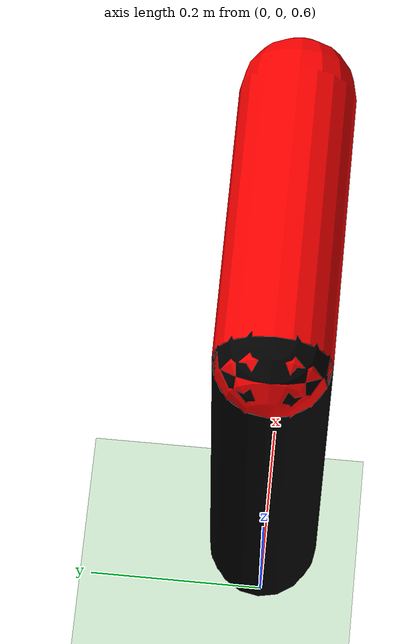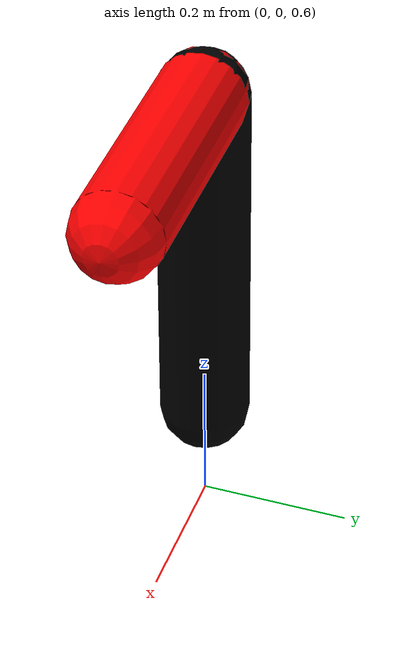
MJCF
<mujoco model="ant">
  <compiler angle="radian" coordinate="local" inertiafromgeom="true"/>
  <option integrator="RK4" timestep="0.01"/>
    <size nconmax="500"/>
  <custom>
    <numeric data="0.0 0.0 0.55 1.0 0.0 0.0 0.0 0.0 1.0 0.0 -1.0 0.0 -1.0 0.0 1.0" name="init_qpos"/>
  </custom>
  <default>
    <joint armature="0.1" damping="5" limited="true"/>
    <geom conaffinity="0" condim="3" density="5.0" friction="1 0.5 0.5" margin="0.01" rgba="0.8 0.6 0.4 1"/>
  </default>
  <asset>
    <texture builtin="gradient" height="100" rgb1="1 1 1" rgb2="0 0 0" type="skybox" width="100"/>
    <texture builtin="flat" height="1278" mark="cross" markrgb="1 1 1" name="texgeom" random="0.01" rgb1="0.8 0.6 0.4" rgb2="0.8 0.6 0.4" type="cube" width="127"/>
    <texture builtin="checker" height="100" name="texplane" rgb1="0 0 0" rgb2="0.8 0.8 0.8" type="2d" width="100"/>
    <material name="MatPlane" reflectance="0.2" shininess="1" specular="1" texrepeat="0 0" texture="texplane"/>
    <material name="geom" texture="texgeom" texuniform="true"/>
  </asset>

  <worldbody>
    <light cutoff="100" diffuse="1 1 1" dir="-0 0 -1.3" directional="true" exponent="1" pos="0 0 1.3" specular=".1 .1 .1"/>
    <geom conaffinity="1" condim="3" material="MatPlane" name="floor" pos="4 0 0" rgba="0.8 0.9 0.8 1" size="6 2.4 1" type="plane"/>

    <body name="torso" pos="0 0 0.75">
      <camera name="track" mode="trackcom" pos="0 -3 0.3" xyaxes="1 0 0 0 0 1"/>
      <geom fromto="0.0 0.0 0.0 0.0 0.0 0.5" name="torso_geom" size="0.06" rgba="0 0 0 1" mass="0.001" type="capsule"/>

       <body name="leg" pos="0.0 0.0 0.5">
          <joint axis="0 0 1" name="j_1" pos="0.0 0.0 0.0" range="-2 2" type="hinge"/>
          <geom fromto="0.0 0.0 0.0 0.3 0.0 0.0" name="leg_geom" size="0.06" rgba="1 0 0 1" mass="0.001" type="capsule"/>
       </body>

    </body>
  </worldbody>

  <actuator>
    <position joint="j_1" kp="50"/>
  </actuator>
</mujoco>
